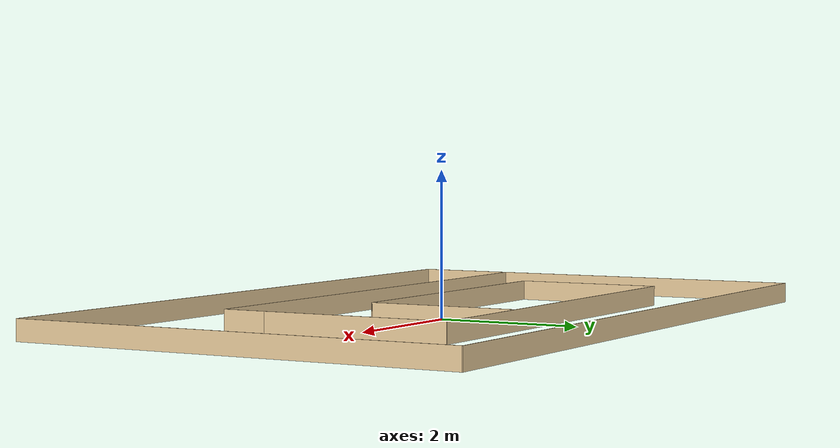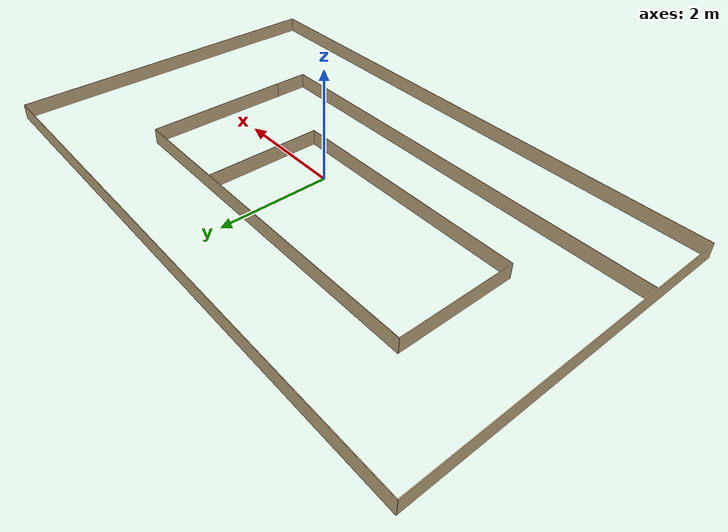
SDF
<?xml version='1.0'?>
<sdf version='1.6'>
  <model name='maze_simple_2'>
    <link name='Wall_10'>
      <pose frame=''>2.6795 0.287674 0 0 -0 1.5708</pose>
      <self_collide>0</self_collide>
      <kinematic>0</kinematic>
      <visual name='Wall_10_Visual'>
        <pose frame=''>0 0 0.14 0 -0 0</pose>
        <geometry>
          <box>
            <size>2.60987 0.01 0.28</size>
          </box>
        </geometry>
        <material>
          <script>
            <uri>file://media/materials/scripts/gazebo.material</uri>
            <name>Gazebo/Grey</name>
          </script>
          <ambient>0.921569 0.807843 0.615686 1</ambient>
          <diffuse>0.7 0.7 0.7 1</diffuse>
          <specular>0.01 0.01 0.01 1</specular>
          <emissive>0 0 0 1</emissive>
        </material>
        <cast_shadows>1</cast_shadows>
        <transparency>0</transparency>
      </visual>
      <collision name='Wall_10_Collision'>
        <laser_retro>0</laser_retro>
        <max_contacts>10</max_contacts>
        <pose frame=''>0 0 0.14 0 -0 0</pose>
        <geometry>
          <box>
            <size>2.60987 0.01 0.28</size>
          </box>
        </geometry>
        <surface>
          <friction>
            <ode>
              <mu>1</mu>
              <mu2>1</mu2>
              <fdir1>0 0 0</fdir1>
              <slip1>0</slip1>
              <slip2>0</slip2>
            </ode>
            <torsional>
              <coefficient>1</coefficient>
              <patch_radius>0</patch_radius>
              <surface_radius>0</surface_radius>
              <use_patch_radius>1</use_patch_radius>
              <ode>
                <slip>0</slip>
              </ode>
            </torsional>
          </friction>
          <bounce>
            <restitution_coefficient>0</restitution_coefficient>
            <threshold>1e+06</threshold>
          </bounce>
          <contact>
            <collide_without_contact>0</collide_without_contact>
            <collide_without_contact_bitmask>1</collide_without_contact_bitmask>
            <collide_bitmask>1</collide_bitmask>
            <ode>
              <soft_cfm>0</soft_cfm>
              <soft_erp>0.2</soft_erp>
              <kp>1e+13</kp>
              <kd>1</kd>
              <max_vel>0.01</max_vel>
              <min_depth>0</min_depth>
            </ode>
            <bullet>
              <split_impulse>1</split_impulse>
              <split_impulse_penetration_threshold>-0.01</split_impulse_penetration_threshold>
              <soft_cfm>0</soft_cfm>
              <soft_erp>0.2</soft_erp>
              <kp>1e+13</kp>
              <kd>1</kd>
            </bullet>
          </contact>
        </surface>
      </collision>
    </link>
    <link name='Wall_11'>
      <pose frame=''>-0.370617 1.59492 0 0 -0 3.14159</pose>
      <self_collide>0</self_collide>
      <kinematic>0</kinematic>
      <visual name='Wall_11_Visual'>
        <pose frame=''>0 0 0.14 0 -0 0</pose>
        <geometry>
          <box>
            <size>6.11032 0.01 0.28</size>
          </box>
        </geometry>
        <material>
          <script>
            <uri>file://media/materials/scripts/gazebo.material</uri>
            <name>Gazebo/Grey</name>
          </script>
          <ambient>0.921569 0.807843 0.615686 1</ambient>
          <diffuse>0.7 0.7 0.7 1</diffuse>
          <specular>0.01 0.01 0.01 1</specular>
          <emissive>0 0 0 1</emissive>
        </material>
        <cast_shadows>1</cast_shadows>
        <transparency>0</transparency>
      </visual>
      <collision name='Wall_11_Collision'>
        <laser_retro>0</laser_retro>
        <max_contacts>10</max_contacts>
        <pose frame=''>0 0 0.14 0 -0 0</pose>
        <geometry>
          <box>
            <size>6.11032 0.01 0.28</size>
          </box>
        </geometry>
        <surface>
          <friction>
            <ode>
              <mu>1</mu>
              <mu2>1</mu2>
              <fdir1>0 0 0</fdir1>
              <slip1>0</slip1>
              <slip2>0</slip2>
            </ode>
            <torsional>
              <coefficient>1</coefficient>
              <patch_radius>0</patch_radius>
              <surface_radius>0</surface_radius>
              <use_patch_radius>1</use_patch_radius>
              <ode>
                <slip>0</slip>
              </ode>
            </torsional>
          </friction>
          <bounce>
            <restitution_coefficient>0</restitution_coefficient>
            <threshold>1e+06</threshold>
          </bounce>
          <contact>
            <collide_without_contact>0</collide_without_contact>
            <collide_without_contact_bitmask>1</collide_without_contact_bitmask>
            <collide_bitmask>1</collide_bitmask>
            <ode>
              <soft_cfm>0</soft_cfm>
              <soft_erp>0.2</soft_erp>
              <kp>1e+13</kp>
              <kd>1</kd>
              <max_vel>0.01</max_vel>
              <min_depth>0</min_depth>
            </ode>
            <bullet>
              <split_impulse>1</split_impulse>
              <split_impulse_penetration_threshold>-0.01</split_impulse_penetration_threshold>
              <soft_cfm>0</soft_cfm>
              <soft_erp>0.2</soft_erp>
              <kp>1e+13</kp>
              <kd>1</kd>
            </bullet>
          </contact>
        </surface>
      </collision>
    </link>
    <link name='Wall_12'>
      <pose frame=''>-3.42099 0.537359 0 0 0 -1.5708</pose>
      <self_collide>0</self_collide>
      <kinematic>0</kinematic>
      <visual name='Wall_12_Visual'>
        <pose frame=''>0 0 0.14 0 -0 0</pose>
        <geometry>
          <box>
            <size>2.11013 0.01 0.28</size>
          </box>
        </geometry>
        <material>
          <script>
            <uri>file://media/materials/scripts/gazebo.material</uri>
            <name>Gazebo/Grey</name>
          </script>
          <ambient>0.921569 0.807843 0.615686 1</ambient>
          <diffuse>0.7 0.7 0.7 1</diffuse>
          <specular>0.01 0.01 0.01 1</specular>
          <emissive>0 0 0 1</emissive>
        </material>
        <cast_shadows>1</cast_shadows>
        <transparency>0</transparency>
      </visual>
      <collision name='Wall_12_Collision'>
        <laser_retro>0</laser_retro>
        <max_contacts>10</max_contacts>
        <pose frame=''>0 0 0.14 0 -0 0</pose>
        <geometry>
          <box>
            <size>2.11013 0.01 0.28</size>
          </box>
        </geometry>
        <surface>
          <friction>
            <ode>
              <mu>1</mu>
              <mu2>1</mu2>
              <fdir1>0 0 0</fdir1>
              <slip1>0</slip1>
              <slip2>0</slip2>
            </ode>
            <torsional>
              <coefficient>1</coefficient>
              <patch_radius>0</patch_radius>
              <surface_radius>0</surface_radius>
              <use_patch_radius>1</use_patch_radius>
              <ode>
                <slip>0</slip>
              </ode>
            </torsional>
          </friction>
          <bounce>
            <restitution_coefficient>0</restitution_coefficient>
            <threshold>1e+06</threshold>
          </bounce>
          <contact>
            <collide_without_contact>0</collide_without_contact>
            <collide_without_contact_bitmask>1</collide_without_contact_bitmask>
            <collide_bitmask>1</collide_bitmask>
            <ode>
              <soft_cfm>0</soft_cfm>
              <soft_erp>0.2</soft_erp>
              <kp>1e+13</kp>
              <kd>1</kd>
              <max_vel>0.01</max_vel>
              <min_depth>0</min_depth>
            </ode>
            <bullet>
              <split_impulse>1</split_impulse>
              <split_impulse_penetration_threshold>-0.01</split_impulse_penetration_threshold>
              <soft_cfm>0</soft_cfm>
              <soft_erp>0.2</soft_erp>
              <kp>1e+13</kp>
              <kd>1</kd>
            </bullet>
          </contact>
        </surface>
      </collision>
    </link>
    <link name='Wall_13'>
      <pose frame=''>-1.24614 -0.52217 0 0 -0 0</pose>
      <self_collide>0</self_collide>
      <kinematic>0</kinematic>
      <visual name='Wall_13_Visual'>
        <pose frame=''>0 0 0.14 0 -0 0</pose>
        <geometry>
          <box>
            <size>4.35968 0.01 0.28</size>
          </box>
        </geometry>
        <material>
          <script>
            <uri>file://media/materials/scripts/gazebo.material</uri>
            <name>Gazebo/Grey</name>
          </script>
          <ambient>0.921569 0.807843 0.615686 1</ambient>
          <diffuse>0.7 0.7 0.7 1</diffuse>
          <specular>0.01 0.01 0.01 1</specular>
          <emissive>0 0 0 1</emissive>
        </material>
        <cast_shadows>1</cast_shadows>
        <transparency>0</transparency>
      </visual>
      <collision name='Wall_13_Collision'>
        <laser_retro>0</laser_retro>
        <max_contacts>10</max_contacts>
        <pose frame=''>0 0 0.14 0 -0 0</pose>
        <geometry>
          <box>
            <size>4.35968 0.01 0.28</size>
          </box>
        </geometry>
        <surface>
          <friction>
            <ode>
              <mu>1</mu>
              <mu2>1</mu2>
              <fdir1>0 0 0</fdir1>
              <slip1>0</slip1>
              <slip2>0</slip2>
            </ode>
            <torsional>
              <coefficient>1</coefficient>
              <patch_radius>0</patch_radius>
              <surface_radius>0</surface_radius>
              <use_patch_radius>1</use_patch_radius>
              <ode>
                <slip>0</slip>
              </ode>
            </torsional>
          </friction>
          <bounce>
            <restitution_coefficient>0</restitution_coefficient>
            <threshold>1e+06</threshold>
          </bounce>
          <contact>
            <collide_without_contact>0</collide_without_contact>
            <collide_without_contact_bitmask>1</collide_without_contact_bitmask>
            <collide_bitmask>1</collide_bitmask>
            <ode>
              <soft_cfm>0</soft_cfm>
              <soft_erp>0.2</soft_erp>
              <kp>1e+13</kp>
              <kd>1</kd>
              <max_vel>0.01</max_vel>
              <min_depth>0</min_depth>
            </ode>
            <bullet>
              <split_impulse>1</split_impulse>
              <split_impulse_penetration_threshold>-0.01</split_impulse_penetration_threshold>
              <soft_cfm>0</soft_cfm>
              <soft_erp>0.2</soft_erp>
              <kp>1e+13</kp>
              <kd>1</kd>
            </bullet>
          </contact>
        </surface>
      </collision>
    </link>
    <link name='Wall_14'>
      <pose frame=''>0.928343 0.537467 0 0 -0 1.5708</pose>
      <self_collide>0</self_collide>
      <kinematic>0</kinematic>
      <inertial>
        <inertia>
          <ixx>nan</ixx>
          <ixy>0</ixy>
          <ixz>0</ixz>
          <iyy>nan</iyy>
          <iyz>0</iyz>
          <izz>nan</izz>
        </inertia>
        <mass>0</mass>
        <pose frame=''>0 0 0 0 -0 0</pose>
      </inertial>
      <visual name='Wall_14_Visual'>
        <pose frame=''>0 0 0.14 0 -0 0</pose>
        <geometry>
          <box>
            <size>2.11908 0.01 0.28</size>
          </box>
        </geometry>
        <material>
          <script>
            <uri>file://media/materials/scripts/gazebo.material</uri>
            <name>Gazebo/Grey</name>
          </script>
          <ambient>0.921569 0.807843 0.615686 1</ambient>
          <diffuse>0.7 0.7 0.7 1</diffuse>
          <specular>0.01 0.01 0.01 1</specular>
          <emissive>0 0 0 1</emissive>
        </material>
        <cast_shadows>1</cast_shadows>
        <transparency>0</transparency>
      </visual>
      <collision name='Wall_14_Collision'>
        <laser_retro>0</laser_retro>
        <max_contacts>10</max_contacts>
        <pose frame=''>0 0 0.14 0 -0 0</pose>
        <geometry>
          <box>
            <size>2.11908 0.01 0.28</size>
          </box>
        </geometry>
        <surface>
          <friction>
            <ode>
              <mu>1</mu>
              <mu2>1</mu2>
              <fdir1>0 0 0</fdir1>
              <slip1>0</slip1>
              <slip2>0</slip2>
            </ode>
            <torsional>
              <coefficient>1</coefficient>
              <patch_radius>0</patch_radius>
              <surface_radius>0</surface_radius>
              <use_patch_radius>1</use_patch_radius>
              <ode>
                <slip>0</slip>
              </ode>
            </torsional>
          </friction>
          <bounce>
            <restitution_coefficient>0</restitution_coefficient>
            <threshold>1e+06</threshold>
          </bounce>
          <contact>
            <collide_without_contact>0</collide_without_contact>
            <collide_without_contact_bitmask>1</collide_without_contact_bitmask>
            <collide_bitmask>1</collide_bitmask>
            <ode>
              <soft_cfm>0</soft_cfm>
              <soft_erp>0.2</soft_erp>
              <kp>1e+13</kp>
              <kd>1</kd>
              <max_vel>0.01</max_vel>
              <min_depth>0</min_depth>
            </ode>
            <bullet>
              <split_impulse>1</split_impulse>
              <split_impulse_penetration_threshold>-0.01</split_impulse_penetration_threshold>
              <soft_cfm>0</soft_cfm>
              <soft_erp>0.2</soft_erp>
              <kp>1e+13</kp>
              <kd>1</kd>
            </bullet>
          </contact>
        </surface>
      </collision>
    </link>
    <link name='Wall_3'>
      <pose frame=''>0 -3.05 0 0 -0 0</pose>
      <self_collide>0</self_collide>
      <kinematic>0</kinematic>
      <visual name='Wall_3_Visual'>
        <pose frame=''>0 0 0.14 0 -0 0</pose>
        <geometry>
          <box>
            <size>9.85978 0.01 0.28</size>
          </box>
        </geometry>
        <material>
          <script>
            <uri>file://media/materials/scripts/gazebo.material</uri>
            <name>Gazebo/Grey</name>
          </script>
          <ambient>0.921569 0.807843 0.615686 1</ambient>
          <diffuse>0.7 0.7 0.7 1</diffuse>
          <specular>0.01 0.01 0.01 1</specular>
          <emissive>0 0 0 1</emissive>
        </material>
        <cast_shadows>1</cast_shadows>
        <transparency>0</transparency>
      </visual>
      <collision name='Wall_3_Collision'>
        <laser_retro>0</laser_retro>
        <max_contacts>10</max_contacts>
        <pose frame=''>0 0 0.14 0 -0 0</pose>
        <geometry>
          <box>
            <size>9.85978 0.01 0.28</size>
          </box>
        </geometry>
        <surface>
          <friction>
            <ode>
              <mu>1</mu>
              <mu2>1</mu2>
              <fdir1>0 0 0</fdir1>
              <slip1>0</slip1>
              <slip2>0</slip2>
            </ode>
            <torsional>
              <coefficient>1</coefficient>
              <patch_radius>0</patch_radius>
              <surface_radius>0</surface_radius>
              <use_patch_radius>1</use_patch_radius>
              <ode>
                <slip>0</slip>
              </ode>
            </torsional>
          </friction>
          <bounce>
            <restitution_coefficient>0</restitution_coefficient>
            <threshold>1e+06</threshold>
          </bounce>
          <contact>
            <collide_without_contact>0</collide_without_contact>
            <collide_without_contact_bitmask>1</collide_without_contact_bitmask>
            <collide_bitmask>1</collide_bitmask>
            <ode>
              <soft_cfm>0</soft_cfm>
              <soft_erp>0.2</soft_erp>
              <kp>1e+13</kp>
              <kd>1</kd>
              <max_vel>0.01</max_vel>
              <min_depth>0</min_depth>
            </ode>
            <bullet>
              <split_impulse>1</split_impulse>
              <split_impulse_penetration_threshold>-0.01</split_impulse_penetration_threshold>
              <soft_cfm>0</soft_cfm>
              <soft_erp>0.2</soft_erp>
              <kp>1e+13</kp>
              <kd>1</kd>
            </bullet>
          </contact>
        </surface>
      </collision>
    </link>
    <link name='Wall_4'>
      <pose frame=''>4.925 0 0 0 -0 1.5708</pose>
      <self_collide>0</self_collide>
      <kinematic>0</kinematic>
      <visual name='Wall_4_Visual'>
        <pose frame=''>0 0 0.14 0 -0 0</pose>
        <geometry>
          <box>
            <size>6.10957 0.01 0.28</size>
          </box>
        </geometry>
        <material>
          <script>
            <uri>file://media/materials/scripts/gazebo.material</uri>
            <name>Gazebo/Grey</name>
          </script>
          <ambient>0.921569 0.807843 0.615686 1</ambient>
          <diffuse>0.7 0.7 0.7 1</diffuse>
          <specular>0.01 0.01 0.01 1</specular>
          <emissive>0 0 0 1</emissive>
        </material>
        <cast_shadows>1</cast_shadows>
        <transparency>0</transparency>
      </visual>
      <collision name='Wall_4_Collision'>
        <laser_retro>0</laser_retro>
        <max_contacts>10</max_contacts>
        <pose frame=''>0 0 0.14 0 -0 0</pose>
        <geometry>
          <box>
            <size>6.10957 0.01 0.28</size>
          </box>
        </geometry>
        <surface>
          <friction>
            <ode>
              <mu>1</mu>
              <mu2>1</mu2>
              <fdir1>0 0 0</fdir1>
              <slip1>0</slip1>
              <slip2>0</slip2>
            </ode>
            <torsional>
              <coefficient>1</coefficient>
              <patch_radius>0</patch_radius>
              <surface_radius>0</surface_radius>
              <use_patch_radius>1</use_patch_radius>
              <ode>
                <slip>0</slip>
              </ode>
            </torsional>
          </friction>
          <bounce>
            <restitution_coefficient>0</restitution_coefficient>
            <threshold>1e+06</threshold>
          </bounce>
          <contact>
            <collide_without_contact>0</collide_without_contact>
            <collide_without_contact_bitmask>1</collide_without_contact_bitmask>
            <collide_bitmask>1</collide_bitmask>
            <ode>
              <soft_cfm>0</soft_cfm>
              <soft_erp>0.2</soft_erp>
              <kp>1e+13</kp>
              <kd>1</kd>
              <max_vel>0.01</max_vel>
              <min_depth>0</min_depth>
            </ode>
            <bullet>
              <split_impulse>1</split_impulse>
              <split_impulse_penetration_threshold>-0.01</split_impulse_penetration_threshold>
              <soft_cfm>0</soft_cfm>
              <soft_erp>0.2</soft_erp>
              <kp>1e+13</kp>
              <kd>1</kd>
            </bullet>
          </contact>
        </surface>
      </collision>
    </link>
    <link name='Wall_5'>
      <pose frame=''>0 3.05 0 0 -0 3.14159</pose>
      <self_collide>0</self_collide>
      <kinematic>0</kinematic>
      <visual name='Wall_5_Visual'>
        <pose frame=''>0 0 0.14 0 -0 0</pose>
        <geometry>
          <box>
            <size>9.86022 0.01 0.28</size>
          </box>
        </geometry>
        <material>
          <script>
            <uri>file://media/materials/scripts/gazebo.material</uri>
            <name>Gazebo/Grey</name>
          </script>
          <ambient>0.921569 0.807843 0.615686 1</ambient>
          <diffuse>0.7 0.7 0.7 1</diffuse>
          <specular>0.01 0.01 0.01 1</specular>
          <emissive>0 0 0 1</emissive>
        </material>
        <cast_shadows>1</cast_shadows>
        <transparency>0</transparency>
      </visual>
      <collision name='Wall_5_Collision'>
        <laser_retro>0</laser_retro>
        <max_contacts>10</max_contacts>
        <pose frame=''>0 0 0.14 0 -0 0</pose>
        <geometry>
          <box>
            <size>9.86022 0.01 0.28</size>
          </box>
        </geometry>
        <surface>
          <friction>
            <ode>
              <mu>1</mu>
              <mu2>1</mu2>
              <fdir1>0 0 0</fdir1>
              <slip1>0</slip1>
              <slip2>0</slip2>
            </ode>
            <torsional>
              <coefficient>1</coefficient>
              <patch_radius>0</patch_radius>
              <surface_radius>0</surface_radius>
              <use_patch_radius>1</use_patch_radius>
              <ode>
                <slip>0</slip>
              </ode>
            </torsional>
          </friction>
          <bounce>
            <restitution_coefficient>0</restitution_coefficient>
            <threshold>1e+06</threshold>
          </bounce>
          <contact>
            <collide_without_contact>0</collide_without_contact>
            <collide_without_contact_bitmask>1</collide_without_contact_bitmask>
            <collide_bitmask>1</collide_bitmask>
            <ode>
              <soft_cfm>0</soft_cfm>
              <soft_erp>0.2</soft_erp>
              <kp>1e+13</kp>
              <kd>1</kd>
              <max_vel>0.01</max_vel>
              <min_depth>0</min_depth>
            </ode>
            <bullet>
              <split_impulse>1</split_impulse>
              <split_impulse_penetration_threshold>-0.01</split_impulse_penetration_threshold>
              <soft_cfm>0</soft_cfm>
              <soft_erp>0.2</soft_erp>
              <kp>1e+13</kp>
              <kd>1</kd>
            </bullet>
          </contact>
        </surface>
      </collision>
    </link>
    <link name='Wall_6'>
      <pose frame=''>-4.925 0 0 0 0 -1.5708</pose>
      <self_collide>0</self_collide>
      <kinematic>0</kinematic>
      <visual name='Wall_6_Visual'>
        <pose frame=''>0 0 0.14 0 -0 0</pose>
        <geometry>
          <box>
            <size>6.11 0.01 0.28</size>
          </box>
        </geometry>
        <material>
          <script>
            <uri>file://media/materials/scripts/gazebo.material</uri>
            <name>Gazebo/Grey</name>
          </script>
          <ambient>0.921569 0.807843 0.615686 1</ambient>
          <diffuse>0.7 0.7 0.7 1</diffuse>
          <specular>0.01 0.01 0.01 1</specular>
          <emissive>0 0 0 1</emissive>
        </material>
        <cast_shadows>1</cast_shadows>
        <transparency>0</transparency>
      </visual>
      <collision name='Wall_6_Collision'>
        <laser_retro>0</laser_retro>
        <max_contacts>10</max_contacts>
        <pose frame=''>0 0 0.14 0 -0 0</pose>
        <geometry>
          <box>
            <size>6.11 0.01 0.28</size>
          </box>
        </geometry>
        <surface>
          <friction>
            <ode>
              <mu>1</mu>
              <mu2>1</mu2>
              <fdir1>0 0 0</fdir1>
              <slip1>0</slip1>
              <slip2>0</slip2>
            </ode>
            <torsional>
              <coefficient>1</coefficient>
              <patch_radius>0</patch_radius>
              <surface_radius>0</surface_radius>
              <use_patch_radius>1</use_patch_radius>
              <ode>
                <slip>0</slip>
              </ode>
            </torsional>
          </friction>
          <bounce>
            <restitution_coefficient>0</restitution_coefficient>
            <threshold>1e+06</threshold>
          </bounce>
          <contact>
            <collide_without_contact>0</collide_without_contact>
            <collide_without_contact_bitmask>1</collide_without_contact_bitmask>
            <collide_bitmask>1</collide_bitmask>
            <ode>
              <soft_cfm>0</soft_cfm>
              <soft_erp>0.2</soft_erp>
              <kp>1e+13</kp>
              <kd>1</kd>
              <max_vel>0.01</max_vel>
              <min_depth>0</min_depth>
            </ode>
            <bullet>
              <split_impulse>1</split_impulse>
              <split_impulse_penetration_threshold>-0.01</split_impulse_penetration_threshold>
              <soft_cfm>0</soft_cfm>
              <soft_erp>0.2</soft_erp>
              <kp>1e+13</kp>
              <kd>1</kd>
            </bullet>
          </contact>
        </surface>
      </collision>
    </link>
    <link name='Wall_8'>
      <pose frame=''>-1.12059 -1.62384 0 0 -0 0</pose>
      <self_collide>0</self_collide>
      <kinematic>0</kinematic>
      <visual name='Wall_8_Visual'>
        <pose frame=''>0 0 0.14 0 -0 0</pose>
        <geometry>
          <box>
            <size>7.60968 0.01 0.28</size>
          </box>
        </geometry>
        <material>
          <script>
            <uri>file://media/materials/scripts/gazebo.material</uri>
            <name>Gazebo/Grey</name>
          </script>
          <ambient>0.921569 0.807843 0.615686 1</ambient>
          <diffuse>0.7 0.7 0.7 1</diffuse>
          <specular>0.01 0.01 0.01 1</specular>
          <emissive>0 0 0 1</emissive>
        </material>
        <cast_shadows>1</cast_shadows>
        <transparency>0</transparency>
      </visual>
      <collision name='Wall_8_Collision'>
        <laser_retro>0</laser_retro>
        <max_contacts>10</max_contacts>
        <pose frame=''>0 0 0.14 0 -0 0</pose>
        <geometry>
          <box>
            <size>7.60968 0.01 0.28</size>
          </box>
        </geometry>
        <surface>
          <friction>
            <ode>
              <mu>1</mu>
              <mu2>1</mu2>
              <fdir1>0 0 0</fdir1>
              <slip1>0</slip1>
              <slip2>0</slip2>
            </ode>
            <torsional>
              <coefficient>1</coefficient>
              <patch_radius>0</patch_radius>
              <surface_radius>0</surface_radius>
              <use_patch_radius>1</use_patch_radius>
              <ode>
                <slip>0</slip>
              </ode>
            </torsional>
          </friction>
          <bounce>
            <restitution_coefficient>0</restitution_coefficient>
            <threshold>1e+06</threshold>
          </bounce>
          <contact>
            <collide_without_contact>0</collide_without_contact>
            <collide_without_contact_bitmask>1</collide_without_contact_bitmask>
            <collide_bitmask>1</collide_bitmask>
            <ode>
              <soft_cfm>0</soft_cfm>
              <soft_erp>0.2</soft_erp>
              <kp>1e+13</kp>
              <kd>1</kd>
              <max_vel>0.01</max_vel>
              <min_depth>0</min_depth>
            </ode>
            <bullet>
              <split_impulse>1</split_impulse>
              <split_impulse_penetration_threshold>-0.01</split_impulse_penetration_threshold>
              <soft_cfm>0</soft_cfm>
              <soft_erp>0.2</soft_erp>
              <kp>1e+13</kp>
              <kd>1</kd>
            </bullet>
          </contact>
        </surface>
      </collision>
    </link>
    <link name='Wall_9'>
      <pose frame=''>2.67951 -1.32196 0 0 -0 1.5708</pose>
      <self_collide>0</self_collide>
      <kinematic>0</kinematic>
      <visual name='Wall_9_Visual'>
        <pose frame=''>0 0 0.14 0 -0 0</pose>
        <geometry>
          <box>
            <size>0.609866 0.01 0.28</size>
          </box>
        </geometry>
        <material>
          <script>
            <uri>file://media/materials/scripts/gazebo.material</uri>
            <name>Gazebo/Grey</name>
          </script>
          <ambient>0.921569 0.807843 0.615686 1</ambient>
          <diffuse>0.7 0.7 0.7 1</diffuse>
          <specular>0.01 0.01 0.01 1</specular>
          <emissive>0 0 0 1</emissive>
        </material>
        <cast_shadows>1</cast_shadows>
        <transparency>0</transparency>
      </visual>
      <collision name='Wall_9_Collision'>
        <laser_retro>0</laser_retro>
        <max_contacts>10</max_contacts>
        <pose frame=''>0 0 0.14 0 -0 0</pose>
        <geometry>
          <box>
            <size>0.609866 0.01 0.28</size>
          </box>
        </geometry>
        <surface>
          <friction>
            <ode>
              <mu>1</mu>
              <mu2>1</mu2>
              <fdir1>0 0 0</fdir1>
              <slip1>0</slip1>
              <slip2>0</slip2>
            </ode>
            <torsional>
              <coefficient>1</coefficient>
              <patch_radius>0</patch_radius>
              <surface_radius>0</surface_radius>
              <use_patch_radius>1</use_patch_radius>
              <ode>
                <slip>0</slip>
              </ode>
            </torsional>
          </friction>
          <bounce>
            <restitution_coefficient>0</restitution_coefficient>
            <threshold>1e+06</threshold>
          </bounce>
          <contact>
            <collide_without_contact>0</collide_without_contact>
            <collide_without_contact_bitmask>1</collide_without_contact_bitmask>
            <collide_bitmask>1</collide_bitmask>
            <ode>
              <soft_cfm>0</soft_cfm>
              <soft_erp>0.2</soft_erp>
              <kp>1e+13</kp>
              <kd>1</kd>
              <max_vel>0.01</max_vel>
              <min_depth>0</min_depth>
            </ode>
            <bullet>
              <split_impulse>1</split_impulse>
              <split_impulse_penetration_threshold>-0.01</split_impulse_penetration_threshold>
              <soft_cfm>0</soft_cfm>
              <soft_erp>0.2</soft_erp>
              <kp>1e+13</kp>
              <kd>1</kd>
            </bullet>
          </contact>
        </surface>
      </collision>
    </link>
    <static>1</static>
    <allow_auto_disable>1</allow_auto_disable>
  </model>
</sdf>
